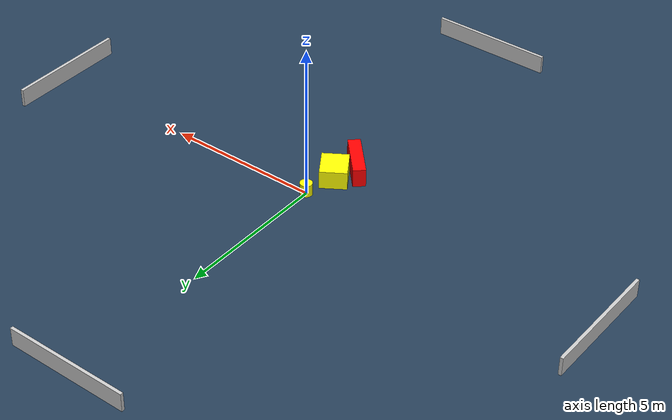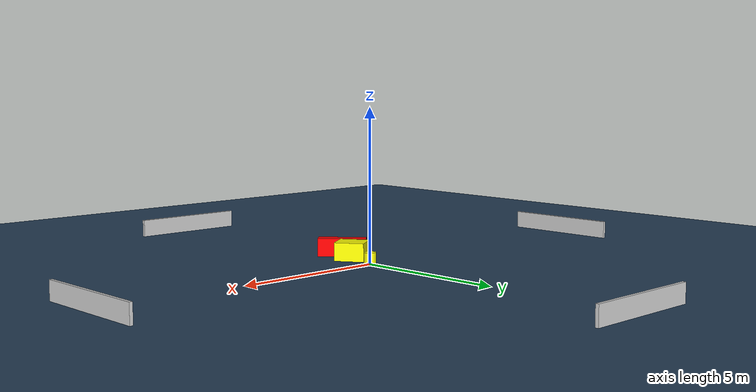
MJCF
<?xml version="1.0" ?>
<mujoco model="generated_environment">
  <option timestep="0.01" integrator="RK4" cone="elliptic"/>
  <default>
    <geom density="1"/>
  </default>
  <asset>
    <texture builtin="gradient" height="3072" name="skybox" rgb1="0.3 0.5 0.7" rgb2="0 0 0" type="skybox" width="512"/>
    <texture builtin="checker" height="300" name="groundplane" rgb1="0.2 0.3 0.4" rgb2="0.1 0.2 0.3" type="2d" width="300"/>
    <material name="groundplane" reflectance="0.2" texrepeat="5 5" texture="groundplane"/>
  </asset>
  <worldbody>
    <light dir="0 0 -1" directional="true" pos="0 0 1.5"/>
    <geom condim="3" friction="0.5 0.005 0.001" material="groundplane" name="floor" pos="0 0 0" size="0 0 0.05" type="plane"/>
    <body name="walls">
      <geom name="wall_1" condim="4" pos="-10.0 0.0 0.3" rgba="0.800000011920929 0.800000011920929 0.800000011920929 1.0" size="0.05 2.0 0.3" type="box"/>
      <geom name="wall_2" condim="4" pos="10.0 0.0 0.3" rgba="0.800000011920929 0.800000011920929 0.800000011920929 1.0" size="0.05 2.0 0.3" type="box"/>
      <geom name="wall_3" condim="4" pos="0.0 -10.0 0.3" rgba="0.800000011920929 0.800000011920929 0.800000011920929 1.0" size="2.0 0.05 0.3" type="box"/>
      <geom name="wall_4" condim="4" pos="0.0 10.0 0.3" rgba="0.800000011920929 0.800000011920929 0.800000011920929 1.0" size="2.0 0.05 0.3" type="box"/>
    </body>
    <body name="robot">
      <joint name="joint_x" type="slide" pos="0 0 0" axis="1 0 0"/>
      <joint name="joint_y" type="slide" pos="0 0 0" axis="0 1 0"/>
      <geom name="robot" type="cylinder" pos="0.0 0.0 0.2" size="0.2 0.2 0.0" mass="5.0" friction="1.0 0.005 0.0001" condim="4" rgba="1.0 1.0 0.0 1.0"/>
    </body>
    <body name="obstacle_1_movable">
      <geom name="obstacle_1_movable" condim="4" pos="-0.222757425354649 -1.0865055598784918 0.3" euler="0 0 213.05818705715032" friction="0.0 0.005 0.001" rgba="1.0 1.0 0.0 1.0" size="0.42790278957448435 0.48922274424095213 0.3" type="box" mass="0.1"/>
      <joint type="free"/>
    </body>
    <body name="obstacle_2_static">
      <geom name="obstacle_2_static" condim="4" pos="-0.49013783471600103 -1.8418351146213714 0.3" euler="0 0 222.99746646193793" friction="0.0 0.005 0.001" rgba="1.0 0.0 0.0 1.0" size="0.20066221576363405 0.7985174497736118 0.3" type="box"/>
    </body>
  </worldbody>
  <actuator>
    <motor name="actuator_x" joint="joint_x" gear="1" ctrlrange="-1 1"/>
    <motor name="actuator_y" joint="joint_y" gear="1" ctrlrange="-1 1"/>
  </actuator>
</mujoco>
